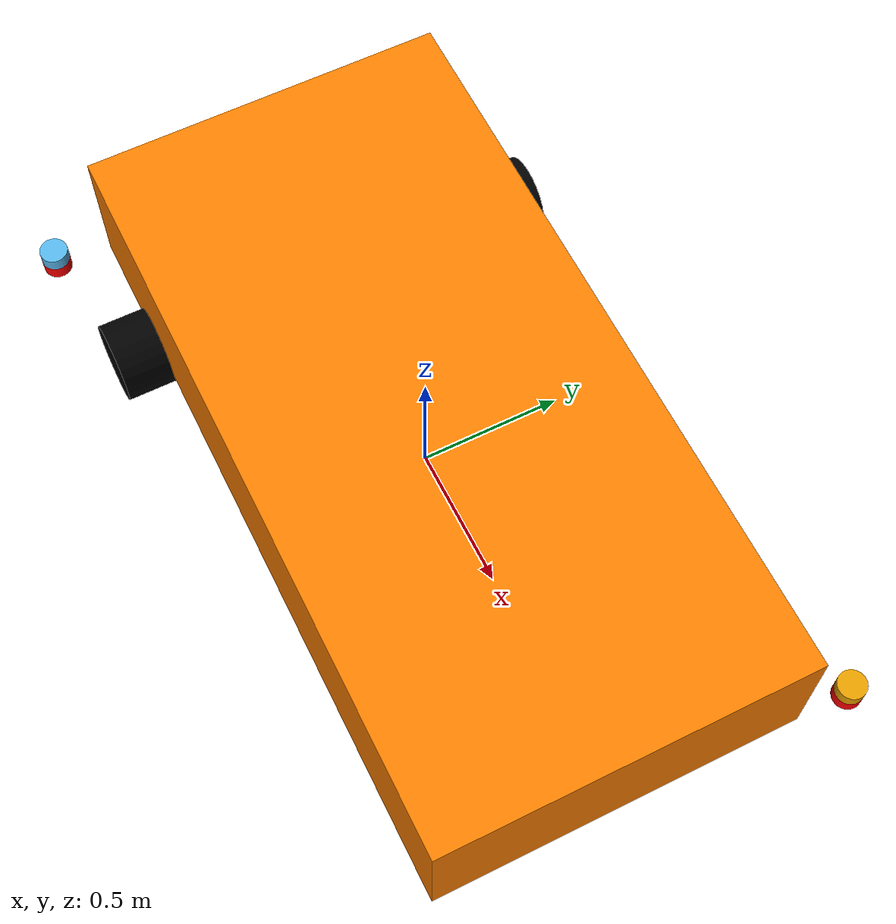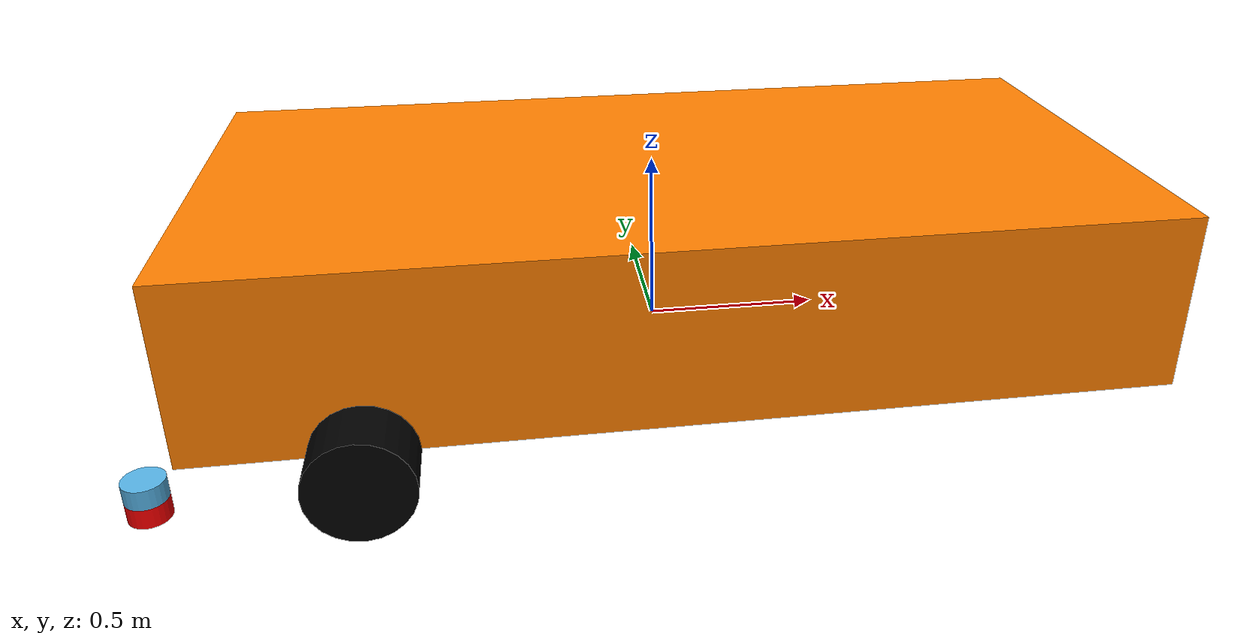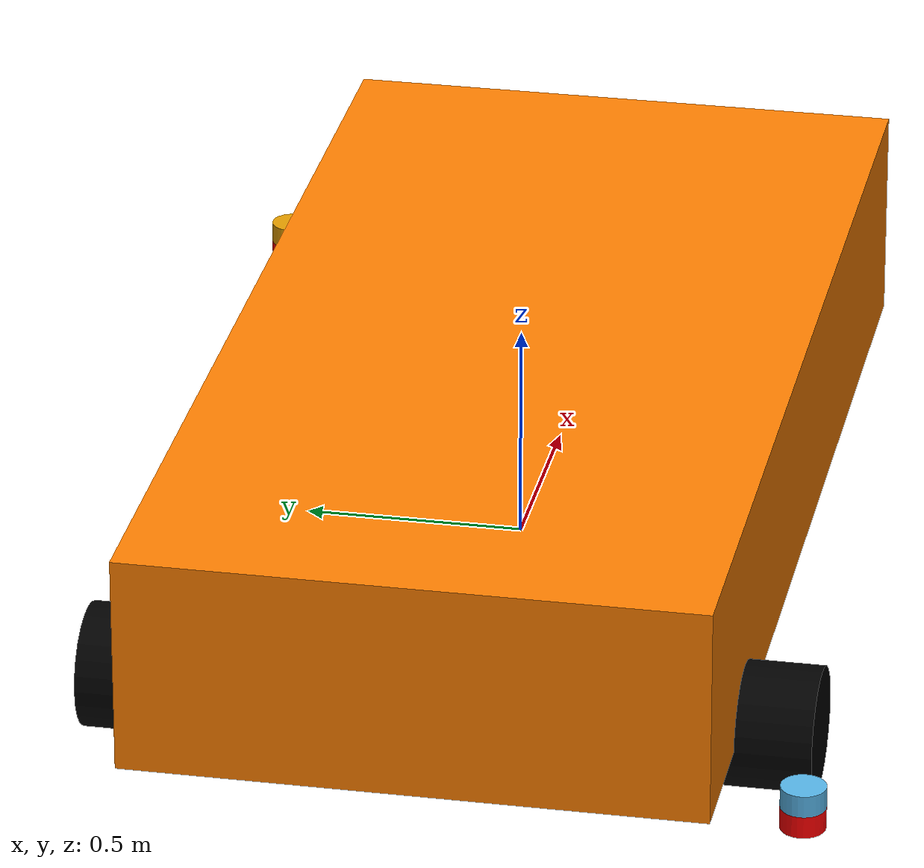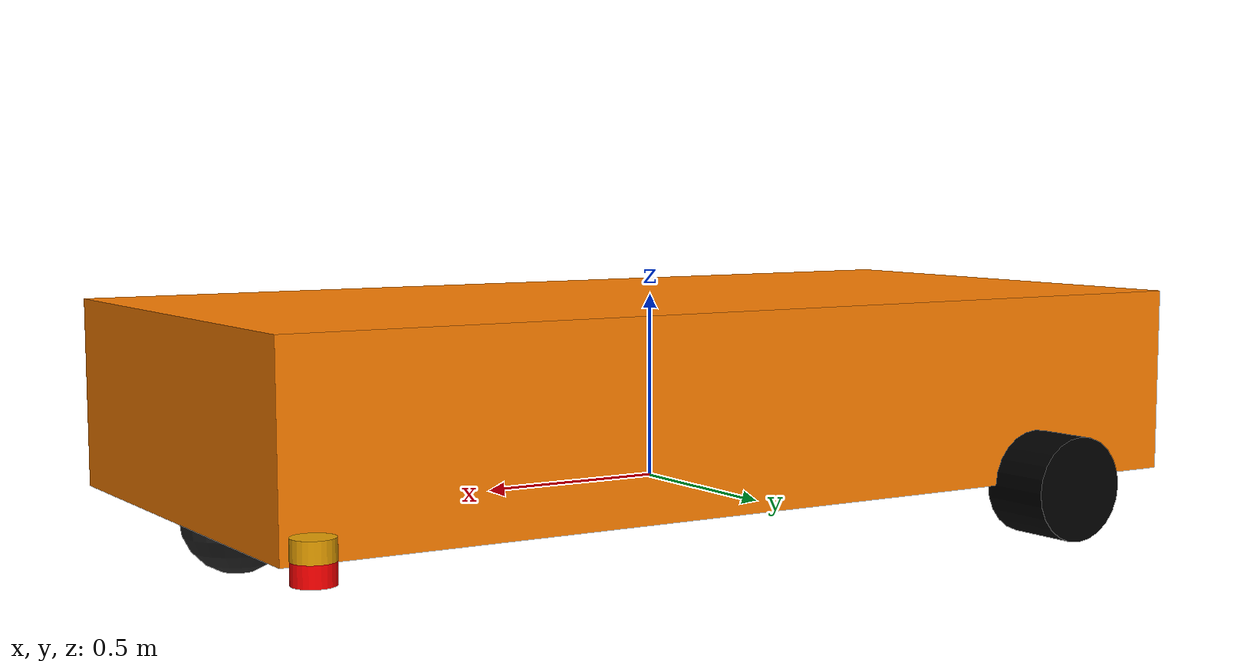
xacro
<?xml version="1.0"?>
<robot name="itls_robot" xmlns:xacro="http://www.ros.org/wiki/xacro">

  <!-- This is used as main xacro for combining different xacros -->
  <!-- For clean version use itls_robot_clean.urdf.xacro -->
  <xacro:include filename="itls_inertial_fns.xacro"/>
  <xacro:include filename="itls_robot_base.xacro"/>
  <xacro:include filename="itls_robot_wheels.xacro"/>
  <xacro:include filename="itls_scanners.xacro"/>
  <xacro:include filename="itls_gazebo.xacro"/>

</robot>

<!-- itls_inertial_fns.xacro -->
<robot name="itls_robot" xmlns:xacro="http://www.ros.org/wiki/xacro">

  <!-- Define intertial property macros  -->
  <xacro:macro name="box_inertia" params="m w h d">
    <inertial>
      <origin xyz="0 0 0" rpy="${pi/2} 0 ${pi/2}"/>
      <mass value="${m}"/>
      <inertia ixx="${(m/12) * (h*h + d*d)}" ixy="0.0" ixz="0.0" iyy="${(m/12) * (w*w + d*d)}" iyz="0.0" izz="${(m/12) * (w*w + h*h)}"/>
    </inertial>
  </xacro:macro>
  <xacro:macro name="cylinder_inertia" params="m r h">
    <inertial>
      <origin xyz="0 0 0" rpy="${pi/2} 0 0" />
      <mass value="${m}"/>
      <inertia ixx="${(m/12) * (3*r*r + h*h)}" ixy = "0" ixz = "0" iyy="${(m/12) * (3*r*r + h*h)}" iyz = "0" izz="${(m/2) * (r*r)}"/>
    </inertial>
  </xacro:macro>
  <xacro:macro name="inertial_sphere" params="mass radius *origin">
        <inertial>
            <xacro:insert_block name="origin"/>
            <mass value="${mass}" />
            <inertia ixx="${(2/5) * mass * (radius*radius)}" ixy="0.0" ixz="0.0"
                    iyy="${(2/5) * mass * (radius*radius)}" iyz="0.0"
                    izz="${(2/5) * mass * (radius*radius)}" />
        </inertial>
    </xacro:macro>

 </robot>

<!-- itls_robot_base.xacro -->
<robot name="itls_robot" xmlns:xacro="http://www.ros.org/wiki/xacro">

  <!-- Define robot constants -->
  <xacro:property name="base_width" value="1.3005"/>
  <xacro:property name="base_length" value="4.136"/>
  <xacro:property name="base_height" value="0.5"/>
  <xacro:property name="base_link_to_front" value="2.3715"/>
  <xacro:property name="wheel_radius" value="0.14"/>
  <xacro:property name="base_length_actual" value="2.64"/>
  <xacro:property name="base_link_to_lidar_rear" value="-1.28"/>

  <!-- Robot Base -->

  <link name="base_link">
    <origin xyz="0.0 0.0 ${wheel_radius}" rpy="0.0 0.0 ${pi/2.0}"/>
  </link>

  <link name="robot_center">
    <visual>
      <geometry>
        <box size="${base_length_actual} ${base_width} ${base_height}"/>
      </geometry>
      <material name="Orange">
        <color rgba="1.0 0.5 0 1.0"/>
      </material>
    </visual>
    <collision>
      <geometry>
        <box size="${base_length_actual} ${base_width} ${base_height}"/>
      </geometry>
    </collision>
    <xacro:box_inertia m="10" w="${base_width}" d="${base_length}" h="${base_height}"/>
  </link>
  <joint name="base_link_T_robot_center" type="fixed">
    <parent link="base_link"/>
    <child link="robot_center"/>
    <origin xyz="${base_link_to_lidar_rear + base_length_actual/2.0} 0.0 ${base_height/2.0}" rpy="0.0 0.0 0.0"/>
  </joint>

  <link name="base_link_front"> </link>

  <joint name="base_link_T_base_link_front" type="fixed">
    <parent link="base_link"/>
    <child link="base_link_front"/>
    <origin xyz="${base_link_to_front} 0.0 0.0" rpy="0.0 0.0 0.0"/>
  </joint>

  <link name="base_link_back"> </link>

  <joint name="base_link_T_base_link_back" type="fixed">
    <parent link="base_link"/>
    <child link="base_link_back"/>
    <origin xyz="${base_link_to_front - base_length} 0.0 0.0" rpy="0.0 0.0 ${pi}"/>
  </joint>

  <!-- Robot Footprint -->

  <link name="base_footprint"/>
  <joint name="base_link_T_base_footprint" type="fixed">
    <parent link="base_link"/>
    <child link="base_footprint"/>
    <origin xyz="0.0 0.0 ${-wheel_radius}" rpy="0 0 0"/>
  </joint>

</robot>

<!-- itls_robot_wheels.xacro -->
<robot name="itls_robot"
  xmlns:xacro="http://www.ros.org/wiki/xacro">

  <!--Wheels Constants-->
  <xacro:property name="wheel_radius" value="0.14"/>
  <xacro:property name="wheel_width" value="0.2"/>
  <xacro:property name="wheel_ygap" value="0.07"/>
  <xacro:property name="wheel_zoff" value="0.0"/>
  <xacro:property name="wheel_xoff" value="-0.5"/>

  <!-- Wheels Xacro and instances -->
  <xacro:macro name="wheel" params="prefix x_reflect y_reflect fixedOrCont">
    <link name="${prefix}_link">
      <visual>
        <origin xyz="0 0 0" rpy="${pi/2} 0 0"/>
        <geometry>
          <cylinder radius="${wheel_radius}" length="${wheel_width}"/>
        </geometry>
        <material name="Black">
          <color rgba="0 0 0 1"/>
        </material>
      </visual>
      <collision>
        <origin xyz="0 0 0" rpy="${pi/2} 0 0"/>
        <geometry>
          <cylinder radius="${wheel_radius}" length="${wheel_width}"/>
        </geometry>
      </collision>
      <xacro:cylinder_inertia m="0.5" r="${wheel_radius}" h="${wheel_width}"/>
    </link>
    <joint name="base_link_T_${prefix}" type="${fixedOrCont}">
      <parent link="base_link"/>
      <child link="${prefix}_link"/>
      <origin xyz="${x_reflect*(wheel_xoff + (base_length_actual/2))} ${y_reflect*(base_width/2+wheel_ygap)} ${wheel_zoff}" rpy="0 0 0"/>
      <axis xyz="0 1 0"/>
    </joint>
  </xacro:macro>
  <xacro:wheel fixedOrCont="continuous" prefix="rearwhl_l" x_reflect="-1" y_reflect="1" />
  <xacro:wheel fixedOrCont="continuous" prefix="rearwhl_r" x_reflect="-1" y_reflect="-1" />

  <joint name="caster_wheel_joint" type="fixed">
    <parent link="base_link"/>
    <child link="caster_wheel"/>
    <origin xyz="1.2 0 0"/>
  </joint>

  <link name="caster_wheel">
    <visual>
      <geometry>
        <sphere radius="${wheel_radius}"/>
      </geometry>
      <material name="black"/>
    </visual>
    <collision>
      <geometry>
        <sphere radius="${wheel_radius}"/>
      </geometry>
    </collision>
    <xacro:inertial_sphere mass="0.1" radius="${wheel_radius}">
      <origin xyz="0 0 0" rpy="0 0 0"/>
    </xacro:inertial_sphere>
  </link>

  <gazebo reference="caster_wheel">
    <material>Gazebo/Black</material>
    <mu1 value="0.001"/>
    <mu2 value="0.001"/>
  </gazebo>

</robot>

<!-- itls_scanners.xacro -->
<robot name="itls_robot"
  xmlns:xacro="http://www.ros.org/wiki/xacro">

  <!--Lidar Sensors Used for Gazebo-->

  <!-- Front LiDAR definition -->
  <joint name="base_link_T_lidar_front" type="fixed">
    <parent link="base_link"/>
    <child link="lidar_front"/>
    <origin xyz="1.36 0.835 0.023" rpy="3.14159 0 -0.610865"/>
  </joint>

  <link name="lidar_front">
    <visual>
      <geometry>
        <cylinder radius="0.05" length="0.05"/>
      </geometry>
      <material name="Red">
        <color rgba="1.0 0 0 1.0"/>
      </material>
    </visual>
    <visual>
      <origin xyz="0 0 -0.05"/>
      <geometry>
        <cylinder radius="0.05" length="0.05"/>
      </geometry>
    </visual>
    <collision>
      <geometry>
        <cylinder radius="0.05" length="0.04"/>
      </geometry>
    </collision>
    <xacro:cylinder_inertia m="0.002" r="0.05" h="0.04"/>
  </link>

  <gazebo reference="lidar_front">
    <sensor name="lidar_front" type="gpu_lidar">
      <pose> 0 0 0 0 0 0 </pose>
      <ignition_frame_id>lidar_front</ignition_frame_id>
      <topic>scan_front</topic>
      <visualize>true</visualize>
      <update_rate>10</update_rate>
      <lidar>
        <scan>
            <horizontal>
                <samples>715</samples>
                <resolution>1</resolution>
                <min_angle>-2.356194</min_angle>
                <max_angle>2.356194</max_angle>
            </horizontal>
            <vertical>
                <samples>1</samples>
                <resolution>1</resolution>
                <min_angle>0.0</min_angle>
                <max_angle>0.0</max_angle>
            </vertical>
        </scan>
        <range>
            <min>0.08</min>
            <max>10.0</max>
            <resolution>0.01</resolution>
        </range>
    </lidar>
    </sensor>
  </gazebo>

  <!-- Rear LiDAR definition -->
  <joint name="base_link_T_lidar_rear" type="fixed">
    <parent link="base_link"/>
    <child link="lidar_rear"/>
    <origin xyz="-1.28 -0.85 0.039" rpy="3.14159 0 2.530725"/>
  </joint>

  <link name="lidar_rear">
    <visual>
      <geometry>
        <cylinder radius="0.05" length="0.05"/>
      </geometry>
      <material name="Red">
        <color rgba="1.0 0 0 1.0"/>
      </material>
    </visual>
    <visual>
      <origin xyz="0 0 -0.05"/>
      <geometry>
        <cylinder radius="0.05" length="0.05"/>
      </geometry>
    </visual>
    <collision>
      <geometry>
        <cylinder radius="0.05" length="0.04"/>
      </geometry>
    </collision>
    <xacro:cylinder_inertia m="0.002" r="0.05" h="0.04"/>
  </link>

  <gazebo reference="lidar_rear">
    <sensor name="lidar_rear" type="gpu_lidar">
      <pose> 0 0 0 0 0 0 </pose>
      <ignition_frame_id>lidar_rear</ignition_frame_id>
      <topic>scan_rear</topic>
      <visualize>true</visualize>
      <update_rate>10</update_rate>
      <lidar>
        <scan>
          <horizontal>
            <samples>360</samples>
            <resolution>1</resolution>
            <min_angle>2.7</min_angle>
            <max_angle>7.1</max_angle>
          </horizontal>
        </scan>
        <range>
          <min>0.3</min>
          <max>12</max>
        </range>
      </lidar>
    </sensor>
  </gazebo>

</robot>
